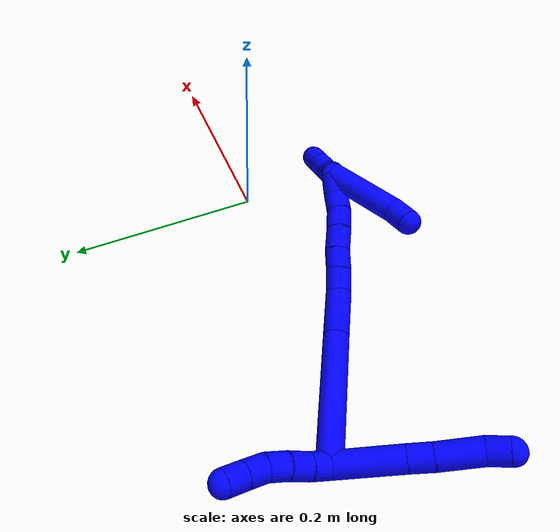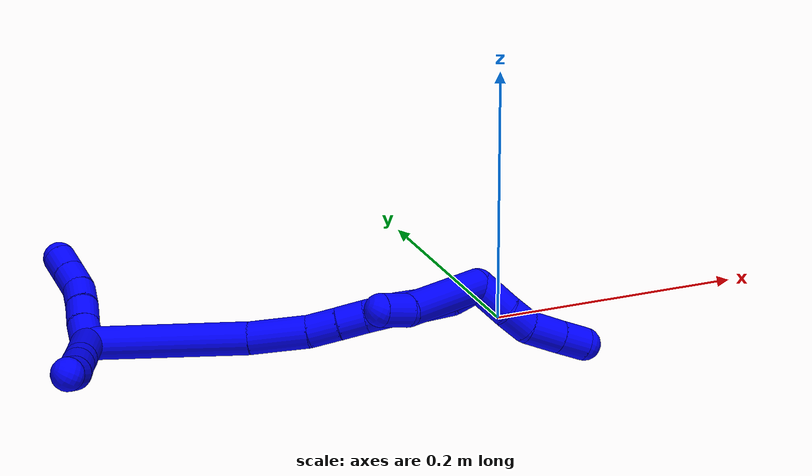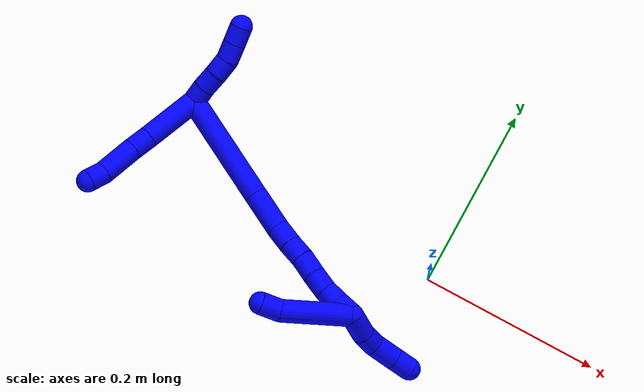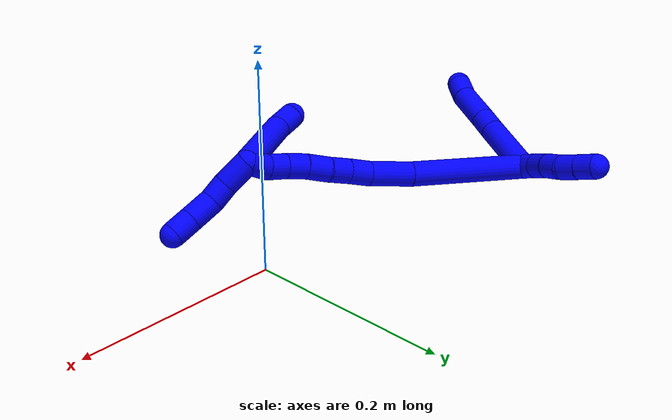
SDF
<sdf version="1.7">
 <world name="default">
  <model name="1">
   <static>0</static>
   <link name="1">
    <collision name="collision-cylinder-e_1_2_8">
     <pose>0.00879 -0.029521 0.011271 1.20609 0.271308 0.18743</pose>
     <geometry><cylinder><radius>0.0125</radius><length>0.065599</length></cylinder></geometry>
     <surface>
      <friction><ode><mu>1.16</mu><mu2>1.16</mu2><slip1>0</slip1><slip2>0</slip2></ode></friction>
      <contact><ode><kp>1e+06</kp><kd>1</kd><max_vel>0</max_vel><min_depth>0.001</min_depth></ode></contact>
     </surface>
    </collision>
    <visual name="visual-cylinder-e_1_2_8">
     <pose>0.00879 -0.029521 0.011271 1.20609 0.271308 0.18743</pose>
     <geometry><cylinder><radius>0.0125</radius><length>0.065599</length></cylinder></geometry>
     <material><ambient>0 0 1 1</ambient></material>
    </visual>
    <collision name="collision-cylinder-e_2_8_9">
     <pose>0.020457 -0.068949 0.026551 1.18622 0.262994 0.177836</pose>
     <geometry><cylinder><radius>0.0125</radius><length>0.022135</length></cylinder></geometry>
     <surface>
      <friction><ode><mu>1.16</mu><mu2>1.16</mu2><slip1>0</slip1><slip2>0</slip2></ode></friction>
      <contact><ode><kp>1e+06</kp><kd>1</kd><max_vel>0</max_vel><min_depth>0.001</min_depth></ode></contact>
     </surface>
    </collision>
    <visual name="visual-cylinder-e_2_8_9">
     <pose>0.020457 -0.068949 0.026551 1.18622 0.262994 0.177836</pose>
     <geometry><cylinder><radius>0.0125</radius><length>0.022135</length></cylinder></geometry>
     <material><ambient>0 0 1 1</ambient></material>
    </visual>
    <collision name="collision-cylinder-e_3_9_10">
     <pose>0.029669 -0.097471 0.037573 1.21057 0.308271 0.214183</pose>
     <geometry><cylinder><radius>0.0125</radius><length>0.041754</length></cylinder></geometry>
     <surface>
      <friction><ode><mu>1.16</mu><mu2>1.16</mu2><slip1>0</slip1><slip2>0</slip2></ode></friction>
      <contact><ode><kp>1e+06</kp><kd>1</kd><max_vel>0</max_vel><min_depth>0.001</min_depth></ode></contact>
     </surface>
    </collision>
    <visual name="visual-cylinder-e_3_9_10">
     <pose>0.029669 -0.097471 0.037573 1.21057 0.308271 0.214183</pose>
     <geometry><cylinder><radius>0.0125</radius><length>0.041754</length></cylinder></geometry>
     <material><ambient>0 0 1 1</ambient></material>
    </visual>
    <collision name="collision-cylinder-e_4_10_6">
     <pose>0.038925 -0.124275 0.050026 0.984273 0.288855 0.155636</pose>
     <geometry><cylinder><radius>0.0125</radius><length>0.020512</length></cylinder></geometry>
     <surface>
      <friction><ode><mu>1.16</mu><mu2>1.16</mu2><slip1>0</slip1><slip2>0</slip2></ode></friction>
      <contact><ode><kp>1e+06</kp><kd>1</kd><max_vel>0</max_vel><min_depth>0.001</min_depth></ode></contact>
     </surface>
    </collision>
    <visual name="visual-cylinder-e_4_10_6">
     <pose>0.038925 -0.124275 0.050026 0.984273 0.288855 0.155636</pose>
     <geometry><cylinder><radius>0.0125</radius><length>0.020512</length></cylinder></geometry>
     <material><ambient>0 0 1 1</ambient></material>
    </visual>
    <collision name="collision-cylinder-e_1_2_11">
     <pose>0.001498 0.009784 0.001422 -1.42652 0.150412 -0.1302</pose>
     <geometry><cylinder><radius>0.0125</radius><length>0.02</length></cylinder></geometry>
     <surface>
      <friction><ode><mu>1.16</mu><mu2>1.16</mu2><slip1>0</slip1><slip2>0</slip2></ode></friction>
      <contact><ode><kp>1e+06</kp><kd>1</kd><max_vel>0</max_vel><min_depth>0.001</min_depth></ode></contact>
     </surface>
    </collision>
    <visual name="visual-cylinder-e_1_2_11">
     <pose>0.001498 0.009784 0.001422 -1.42652 0.150412 -0.1302</pose>
     <geometry><cylinder><radius>0.0125</radius><length>0.02</length></cylinder></geometry>
     <material><ambient>0 0 1 1</ambient></material>
    </visual>
    <collision name="collision-cylinder-e_2_11_12">
     <pose>0.0049 0.029368 0.003437 -1.5103 0.191526 -0.180339</pose>
     <geometry><cylinder><radius>0.0125</radius><length>0.02</length></cylinder></geometry>
     <surface>
      <friction><ode><mu>1.16</mu><mu2>1.16</mu2><slip1>0</slip1><slip2>0</slip2></ode></friction>
      <contact><ode><kp>1e+06</kp><kd>1</kd><max_vel>0</max_vel><min_depth>0.001</min_depth></ode></contact>
     </surface>
    </collision>
    <visual name="visual-cylinder-e_2_11_12">
     <pose>0.0049 0.029368 0.003437 -1.5103 0.191526 -0.180339</pose>
     <geometry><cylinder><radius>0.0125</radius><length>0.02</length></cylinder></geometry>
     <material><ambient>0 0 1 1</ambient></material>
    </visual>
    <collision name="collision-cylinder-e_3_12_13">
     <pose>0.007578 0.049117 0.004664 -1.50715 0.077451 -0.072677</pose>
     <geometry><cylinder><radius>0.0125</radius><length>0.02</length></cylinder></geometry>
     <surface>
      <friction><ode><mu>1.16</mu><mu2>1.16</mu2><slip1>0</slip1><slip2>0</slip2></ode></friction>
      <contact><ode><kp>1e+06</kp><kd>1</kd><max_vel>0</max_vel><min_depth>0.001</min_depth></ode></contact>
     </surface>
    </collision>
    <visual name="visual-cylinder-e_3_12_13">
     <pose>0.007578 0.049117 0.004664 -1.50715 0.077451 -0.072677</pose>
     <geometry><cylinder><radius>0.0125</radius><length>0.02</length></cylinder></geometry>
     <material><ambient>0 0 1 1</ambient></material>
    </visual>
    <collision name="collision-cylinder-e_4_13_14">
     <pose>0.007994 0.068596 0.00831 -1.26467 -0.035761 0.026204</pose>
     <geometry><cylinder><radius>0.0125</radius><length>0.02</length></cylinder></geometry>
     <surface>
      <friction><ode><mu>1.16</mu><mu2>1.16</mu2><slip1>0</slip1><slip2>0</slip2></ode></friction>
      <contact><ode><kp>1e+06</kp><kd>1</kd><max_vel>0</max_vel><min_depth>0.001</min_depth></ode></contact>
     </surface>
    </collision>
    <visual name="visual-cylinder-e_4_13_14">
     <pose>0.007994 0.068596 0.00831 -1.26467 -0.035761 0.026204</pose>
     <geometry><cylinder><radius>0.0125</radius><length>0.02</length></cylinder></geometry>
     <material><ambient>0 0 1 1</ambient></material>
    </visual>
    <collision name="collision-cylinder-e_5_14_5">
     <pose>0.00728 0.087603 0.01449 -1.24819 -0.035613 0.025646</pose>
     <geometry><cylinder><radius>0.0125</radius><length>0.02</length></cylinder></geometry>
     <surface>
      <friction><ode><mu>1.16</mu><mu2>1.16</mu2><slip1>0</slip1><slip2>0</slip2></ode></friction>
      <contact><ode><kp>1e+06</kp><kd>1</kd><max_vel>0</max_vel><min_depth>0.001</min_depth></ode></contact>
     </surface>
    </collision>
    <visual name="visual-cylinder-e_5_14_5">
     <pose>0.00728 0.087603 0.01449 -1.24819 -0.035613 0.025646</pose>
     <geometry><cylinder><radius>0.0125</radius><length>0.02</length></cylinder></geometry>
     <material><ambient>0 0 1 1</ambient></material>
    </visual>
    <collision name="collision-cylinder-e_1_2_15">
     <pose>0.037294 -0.015691 -0.046566 2.81657 0.649205 2.23483</pose>
     <geometry><cylinder><radius>0.0125</radius><length>0.123377</length></cylinder></geometry>
     <surface>
      <friction><ode><mu>1.16</mu><mu2>1.16</mu2><slip1>0</slip1><slip2>0</slip2></ode></friction>
      <contact><ode><kp>1e+06</kp><kd>1</kd><max_vel>0</max_vel><min_depth>0.001</min_depth></ode></contact>
     </surface>
    </collision>
    <visual name="visual-cylinder-e_1_2_15">
     <pose>0.037294 -0.015691 -0.046566 2.81657 0.649205 2.23483</pose>
     <geometry><cylinder><radius>0.0125</radius><length>0.123377</length></cylinder></geometry>
     <material><ambient>0 0 1 1</ambient></material>
    </visual>
    <collision name="collision-cylinder-e_2_15_16">
     <pose>0.089651 -0.03669 -0.109019 2.81918 0.732435 2.33953</pose>
     <geometry><cylinder><radius>0.0125</radius><length>0.045053</length></cylinder></geometry>
     <surface>
      <friction><ode><mu>1.16</mu><mu2>1.16</mu2><slip1>0</slip1><slip2>0</slip2></ode></friction>
      <contact><ode><kp>1e+06</kp><kd>1</kd><max_vel>0</max_vel><min_depth>0.001</min_depth></ode></contact>
     </surface>
    </collision>
    <visual name="visual-cylinder-e_2_15_16">
     <pose>0.089651 -0.03669 -0.109019 2.81918 0.732435 2.33953</pose>
     <geometry><cylinder><radius>0.0125</radius><length>0.045053</length></cylinder></geometry>
     <material><ambient>0 0 1 1</ambient></material>
    </visual>
    <collision name="collision-cylinder-e_3_16_17">
     <pose>0.113462 -0.04369 -0.1323 2.91651 0.856377 2.65613</pose>
     <geometry><cylinder><radius>0.0125</radius><length>0.023157</length></cylinder></geometry>
     <surface>
      <friction><ode><mu>1.16</mu><mu2>1.16</mu2><slip1>0</slip1><slip2>0</slip2></ode></friction>
      <contact><ode><kp>1e+06</kp><kd>1</kd><max_vel>0</max_vel><min_depth>0.001</min_depth></ode></contact>
     </surface>
    </collision>
    <visual name="visual-cylinder-e_3_16_17">
     <pose>0.113462 -0.04369 -0.1323 2.91651 0.856377 2.65613</pose>
     <geometry><cylinder><radius>0.0125</radius><length>0.023157</length></cylinder></geometry>
     <material><ambient>0 0 1 1</ambient></material>
    </visual>
    <collision name="collision-cylinder-e_4_17_18">
     <pose>0.130121 -0.04637 -0.146748 3.00256 0.837878 2.83137</pose>
     <geometry><cylinder><radius>0.0125</radius><length>0.021291</length></cylinder></geometry>
     <surface>
      <friction><ode><mu>1.16</mu><mu2>1.16</mu2><slip1>0</slip1><slip2>0</slip2></ode></friction>
      <contact><ode><kp>1e+06</kp><kd>1</kd><max_vel>0</max_vel><min_depth>0.001</min_depth></ode></contact>
     </surface>
    </collision>
    <visual name="visual-cylinder-e_4_17_18">
     <pose>0.130121 -0.04637 -0.146748 3.00256 0.837878 2.83137</pose>
     <geometry><cylinder><radius>0.0125</radius><length>0.021291</length></cylinder></geometry>
     <material><ambient>0 0 1 1</ambient></material>
    </visual>
    <collision name="collision-cylinder-e_5_18_19">
     <pose>0.146977 -0.049748 -0.161086 2.82449 0.862193 2.47246</pose>
     <geometry><cylinder><radius>0.0125</radius><length>0.02356</length></cylinder></geometry>
     <surface>
      <friction><ode><mu>1.16</mu><mu2>1.16</mu2><slip1>0</slip1><slip2>0</slip2></ode></friction>
      <contact><ode><kp>1e+06</kp><kd>1</kd><max_vel>0</max_vel><min_depth>0.001</min_depth></ode></contact>
     </surface>
    </collision>
    <visual name="visual-cylinder-e_5_18_19">
     <pose>0.146977 -0.049748 -0.161086 2.82449 0.862193 2.47246</pose>
     <geometry><cylinder><radius>0.0125</radius><length>0.02356</length></cylinder></geometry>
     <material><ambient>0 0 1 1</ambient></material>
    </visual>
    <collision name="collision-cylinder-e_6_19_20">
     <pose>0.163181 -0.054136 -0.175942 2.88367 0.747574 2.50295</pose>
     <geometry><cylinder><radius>0.0125</radius><length>0.021357</length></cylinder></geometry>
     <surface>
      <friction><ode><mu>1.16</mu><mu2>1.16</mu2><slip1>0</slip1><slip2>0</slip2></ode></friction>
      <contact><ode><kp>1e+06</kp><kd>1</kd><max_vel>0</max_vel><min_depth>0.001</min_depth></ode></contact>
     </surface>
    </collision>
    <visual name="visual-cylinder-e_6_19_20">
     <pose>0.163181 -0.054136 -0.175942 2.88367 0.747574 2.50295</pose>
     <geometry><cylinder><radius>0.0125</radius><length>0.021357</length></cylinder></geometry>
     <material><ambient>0 0 1 1</ambient></material>
    </visual>
    <collision name="collision-cylinder-e_7_20_21">
     <pose>0.17722 -0.056392 -0.191031 3.10723 0.733488 3.05218</pose>
     <geometry><cylinder><radius>0.0125</radius><length>0.020251</length></cylinder></geometry>
     <surface>
      <friction><ode><mu>1.16</mu><mu2>1.16</mu2><slip1>0</slip1><slip2>0</slip2></ode></friction>
      <contact><ode><kp>1e+06</kp><kd>1</kd><max_vel>0</max_vel><min_depth>0.001</min_depth></ode></contact>
     </surface>
    </collision>
    <visual name="visual-cylinder-e_7_20_21">
     <pose>0.17722 -0.056392 -0.191031 3.10723 0.733488 3.05218</pose>
     <geometry><cylinder><radius>0.0125</radius><length>0.020251</length></cylinder></geometry>
     <material><ambient>0 0 1 1</ambient></material>
    </visual>
    <collision name="collision-cylinder-e_8_21_1">
     <pose>0.193423 -0.05614 -0.204152 -3.05081 1.03255 -2.98188</pose>
     <geometry><cylinder><radius>0.0125</radius><length>0.021954</length></cylinder></geometry>
     <surface>
      <friction><ode><mu>1.16</mu><mu2>1.16</mu2><slip1>0</slip1><slip2>0</slip2></ode></friction>
      <contact><ode><kp>1e+06</kp><kd>1</kd><max_vel>0</max_vel><min_depth>0.001</min_depth></ode></contact>
     </surface>
    </collision>
    <visual name="visual-cylinder-e_8_21_1">
     <pose>0.193423 -0.05614 -0.204152 -3.05081 1.03255 -2.98188</pose>
     <geometry><cylinder><radius>0.0125</radius><length>0.021954</length></cylinder></geometry>
     <material><ambient>0 0 1 1</ambient></material>
    </visual>
    <collision name="collision-cylinder-e_1_1_22">
     <pose>0.192288 -0.078204 -0.180564 0.658257 -0.278716 -0.095744</pose>
     <geometry><cylinder><radius>0.0125</radius><length>0.076766</length></cylinder></geometry>
     <surface>
      <friction><ode><mu>1.16</mu><mu2>1.16</mu2><slip1>0</slip1><slip2>0</slip2></ode></friction>
      <contact><ode><kp>1e+06</kp><kd>1</kd><max_vel>0</max_vel><min_depth>0.001</min_depth></ode></contact>
     </surface>
    </collision>
    <visual name="visual-cylinder-e_1_1_22">
     <pose>0.192288 -0.078204 -0.180564 0.658257 -0.278716 -0.095744</pose>
     <geometry><cylinder><radius>0.0125</radius><length>0.076766</length></cylinder></geometry>
     <material><ambient>0 0 1 1</ambient></material>
    </visual>
    <collision name="collision-cylinder-e_2_22_4">
     <pose>0.178997 -0.104304 -0.140646 0.317531 -0.237295 -0.038169</pose>
     <geometry><cylinder><radius>0.0125</radius><length>0.023234</length></cylinder></geometry>
     <surface>
      <friction><ode><mu>1.16</mu><mu2>1.16</mu2><slip1>0</slip1><slip2>0</slip2></ode></friction>
      <contact><ode><kp>1e+06</kp><kd>1</kd><max_vel>0</max_vel><min_depth>0.001</min_depth></ode></contact>
     </surface>
    </collision>
    <visual name="visual-cylinder-e_2_22_4">
     <pose>0.178997 -0.104304 -0.140646 0.317531 -0.237295 -0.038169</pose>
     <geometry><cylinder><radius>0.0125</radius><length>0.023234</length></cylinder></geometry>
     <material><ambient>0 0 1 1</ambient></material>
    </visual>
    <collision name="collision-cylinder-e_1_1_23">
     <pose>0.200475 -0.060515 -0.223459 2.79916 -0.161732 -0.876604</pose>
     <geometry><cylinder><radius>0.0125</radius><length>0.029481</length></cylinder></geometry>
     <surface>
      <friction><ode><mu>1.16</mu><mu2>1.16</mu2><slip1>0</slip1><slip2>0</slip2></ode></friction>
      <contact><ode><kp>1e+06</kp><kd>1</kd><max_vel>0</max_vel><min_depth>0.001</min_depth></ode></contact>
     </surface>
    </collision>
    <visual name="visual-cylinder-e_1_1_23">
     <pose>0.200475 -0.060515 -0.223459 2.79916 -0.161732 -0.876604</pose>
     <geometry><cylinder><radius>0.0125</radius><length>0.029481</length></cylinder></geometry>
     <material><ambient>0 0 1 1</ambient></material>
    </visual>
    <collision name="collision-cylinder-e_2_23_24">
     <pose>0.196259 -0.066924 -0.247211 2.99103 -0.179304 -1.74542</pose>
     <geometry><cylinder><radius>0.0125</radius><length>0.020657</length></cylinder></geometry>
     <surface>
      <friction><ode><mu>1.16</mu><mu2>1.16</mu2><slip1>0</slip1><slip2>0</slip2></ode></friction>
      <contact><ode><kp>1e+06</kp><kd>1</kd><max_vel>0</max_vel><min_depth>0.001</min_depth></ode></contact>
     </surface>
    </collision>
    <visual name="visual-cylinder-e_2_23_24">
     <pose>0.196259 -0.066924 -0.247211 2.99103 -0.179304 -1.74542</pose>
     <geometry><cylinder><radius>0.0125</radius><length>0.020657</length></cylinder></geometry>
     <material><ambient>0 0 1 1</ambient></material>
    </visual>
    <collision name="collision-cylinder-e_3_24_25">
     <pose>0.195934 -0.067838 -0.271107 -3.09755 0.109018 -2.37421</pose>
     <geometry><cylinder><radius>0.0125</radius><length>0.027887</length></cylinder></geometry>
     <surface>
      <friction><ode><mu>1.16</mu><mu2>1.16</mu2><slip1>0</slip1><slip2>0</slip2></ode></friction>
      <contact><ode><kp>1e+06</kp><kd>1</kd><max_vel>0</max_vel><min_depth>0.001</min_depth></ode></contact>
     </surface>
    </collision>
    <visual name="visual-cylinder-e_3_24_25">
     <pose>0.195934 -0.067838 -0.271107 -3.09755 0.109018 -2.37421</pose>
     <geometry><cylinder><radius>0.0125</radius><length>0.027887</length></cylinder></geometry>
     <material><ambient>0 0 1 1</ambient></material>
    </visual>
    <collision name="collision-cylinder-e_4_25_3">
     <pose>0.198804 -0.066614 -0.29584 -3.08521 0.123453 -2.28552</pose>
     <geometry><cylinder><radius>0.0125</radius><length>0.021974</length></cylinder></geometry>
     <surface>
      <friction><ode><mu>1.16</mu><mu2>1.16</mu2><slip1>0</slip1><slip2>0</slip2></ode></friction>
      <contact><ode><kp>1e+06</kp><kd>1</kd><max_vel>0</max_vel><min_depth>0.001</min_depth></ode></contact>
     </surface>
    </collision>
    <visual name="visual-cylinder-e_4_25_3">
     <pose>0.198804 -0.066614 -0.29584 -3.08521 0.123453 -2.28552</pose>
     <geometry><cylinder><radius>0.0125</radius><length>0.021974</length></cylinder></geometry>
     <material><ambient>0 0 1 1</ambient></material>
    </visual>
    <collision name="collision-sphere-3">
     <pose>0.200157 -0.065999 -0.306726 0 -0 0</pose>
     <geometry><sphere><radius>0.0125</radius></sphere></geometry>
     <surface>
      <friction><ode><mu>1.16</mu><mu2>1.16</mu2><slip1>0</slip1><slip2>0</slip2></ode></friction>
      <contact><ode><kp>1e+06</kp><kd>1</kd><max_vel>0</max_vel><min_depth>0.001</min_depth></ode></contact>
     </surface>
    </collision>
    <visual name="visual-sphere-3">
     <pose>0.200157 -0.065999 -0.306726 0 -0 0</pose>
     <geometry><sphere><radius>0.0125</radius></sphere></geometry>
     <material><ambient>0 0 1 1</ambient></material>
    </visual>
    <collision name="collision-sphere-25">
     <pose>0.197451 -0.067228 -0.284954 0 -0 0</pose>
     <geometry><sphere><radius>0.0125</radius></sphere></geometry>
     <surface>
      <friction><ode><mu>1.16</mu><mu2>1.16</mu2><slip1>0</slip1><slip2>0</slip2></ode></friction>
      <contact><ode><kp>1e+06</kp><kd>1</kd><max_vel>0</max_vel><min_depth>0.001</min_depth></ode></contact>
     </surface>
    </collision>
    <visual name="visual-sphere-25">
     <pose>0.197451 -0.067228 -0.284954 0 -0 0</pose>
     <geometry><sphere><radius>0.0125</radius></sphere></geometry>
     <material><ambient>0 0 1 1</ambient></material>
    </visual>
    <collision name="collision-sphere-24">
     <pose>0.194417 -0.068449 -0.257259 0 -0 0</pose>
     <geometry><sphere><radius>0.0125</radius></sphere></geometry>
     <surface>
      <friction><ode><mu>1.16</mu><mu2>1.16</mu2><slip1>0</slip1><slip2>0</slip2></ode></friction>
      <contact><ode><kp>1e+06</kp><kd>1</kd><max_vel>0</max_vel><min_depth>0.001</min_depth></ode></contact>
     </surface>
    </collision>
    <visual name="visual-sphere-24">
     <pose>0.194417 -0.068449 -0.257259 0 -0 0</pose>
     <geometry><sphere><radius>0.0125</radius></sphere></geometry>
     <material><ambient>0 0 1 1</ambient></material>
    </visual>
    <collision name="collision-sphere-23">
     <pose>0.198101 -0.0654 -0.237163 0 -0 0</pose>
     <geometry><sphere><radius>0.0125</radius></sphere></geometry>
     <surface>
      <friction><ode><mu>1.16</mu><mu2>1.16</mu2><slip1>0</slip1><slip2>0</slip2></ode></friction>
      <contact><ode><kp>1e+06</kp><kd>1</kd><max_vel>0</max_vel><min_depth>0.001</min_depth></ode></contact>
     </surface>
    </collision>
    <visual name="visual-sphere-23">
     <pose>0.198101 -0.0654 -0.237163 0 -0 0</pose>
     <geometry><sphere><radius>0.0125</radius></sphere></geometry>
     <material><ambient>0 0 1 1</ambient></material>
    </visual>
    <collision name="collision-sphere-4">
     <pose>0.176267 -0.107829 -0.129919 0 -0 0</pose>
     <geometry><sphere><radius>0.0125</radius></sphere></geometry>
     <surface>
      <friction><ode><mu>1.16</mu><mu2>1.16</mu2><slip1>0</slip1><slip2>0</slip2></ode></friction>
      <contact><ode><kp>1e+06</kp><kd>1</kd><max_vel>0</max_vel><min_depth>0.001</min_depth></ode></contact>
     </surface>
    </collision>
    <visual name="visual-sphere-4">
     <pose>0.176267 -0.107829 -0.129919 0 -0 0</pose>
     <geometry><sphere><radius>0.0125</radius></sphere></geometry>
     <material><ambient>0 0 1 1</ambient></material>
    </visual>
    <collision name="collision-sphere-22">
     <pose>0.181728 -0.100778 -0.151373 0 -0 0</pose>
     <geometry><sphere><radius>0.0125</radius></sphere></geometry>
     <surface>
      <friction><ode><mu>1.16</mu><mu2>1.16</mu2><slip1>0</slip1><slip2>0</slip2></ode></friction>
      <contact><ode><kp>1e+06</kp><kd>1</kd><max_vel>0</max_vel><min_depth>0.001</min_depth></ode></contact>
     </surface>
    </collision>
    <visual name="visual-sphere-22">
     <pose>0.181728 -0.100778 -0.151373 0 -0 0</pose>
     <geometry><sphere><radius>0.0125</radius></sphere></geometry>
     <material><ambient>0 0 1 1</ambient></material>
    </visual>
    <collision name="collision-sphere-1">
     <pose>0.202848 -0.05563 -0.209756 0 -0 0</pose>
     <geometry><sphere><radius>0.0125</radius></sphere></geometry>
     <surface>
      <friction><ode><mu>1.16</mu><mu2>1.16</mu2><slip1>0</slip1><slip2>0</slip2></ode></friction>
      <contact><ode><kp>1e+06</kp><kd>1</kd><max_vel>0</max_vel><min_depth>0.001</min_depth></ode></contact>
     </surface>
    </collision>
    <visual name="visual-sphere-1">
     <pose>0.202848 -0.05563 -0.209756 0 -0 0</pose>
     <geometry><sphere><radius>0.0125</radius></sphere></geometry>
     <material><ambient>0 0 1 1</ambient></material>
    </visual>
    <collision name="collision-sphere-21">
     <pose>0.183998 -0.05665 -0.198548 0 -0 0</pose>
     <geometry><sphere><radius>0.0125</radius></sphere></geometry>
     <surface>
      <friction><ode><mu>1.16</mu><mu2>1.16</mu2><slip1>0</slip1><slip2>0</slip2></ode></friction>
      <contact><ode><kp>1e+06</kp><kd>1</kd><max_vel>0</max_vel><min_depth>0.001</min_depth></ode></contact>
     </surface>
    </collision>
    <visual name="visual-sphere-21">
     <pose>0.183998 -0.05665 -0.198548 0 -0 0</pose>
     <geometry><sphere><radius>0.0125</radius></sphere></geometry>
     <material><ambient>0 0 1 1</ambient></material>
    </visual>
    <collision name="collision-sphere-11">
     <pose>0.002997 0.019569 0.002843 0 -0 0</pose>
     <geometry><sphere><radius>0.0125</radius></sphere></geometry>
     <surface>
      <friction><ode><mu>1.16</mu><mu2>1.16</mu2><slip1>0</slip1><slip2>0</slip2></ode></friction>
      <contact><ode><kp>1e+06</kp><kd>1</kd><max_vel>0</max_vel><min_depth>0.001</min_depth></ode></contact>
     </surface>
    </collision>
    <visual name="visual-sphere-11">
     <pose>0.002997 0.019569 0.002843 0 -0 0</pose>
     <geometry><sphere><radius>0.0125</radius></sphere></geometry>
     <material><ambient>0 0 1 1</ambient></material>
    </visual>
    <collision name="collision-sphere-6">
     <pose>0.041846 -0.132463 0.055467 0 -0 0</pose>
     <geometry><sphere><radius>0.0125</radius></sphere></geometry>
     <surface>
      <friction><ode><mu>1.16</mu><mu2>1.16</mu2><slip1>0</slip1><slip2>0</slip2></ode></friction>
      <contact><ode><kp>1e+06</kp><kd>1</kd><max_vel>0</max_vel><min_depth>0.001</min_depth></ode></contact>
     </surface>
    </collision>
    <visual name="visual-sphere-6">
     <pose>0.041846 -0.132463 0.055467 0 -0 0</pose>
     <geometry><sphere><radius>0.0125</radius></sphere></geometry>
     <material><ambient>0 0 1 1</ambient></material>
    </visual>
    <collision name="collision-sphere-10">
     <pose>0.036003 -0.116087 0.044584 0 -0 0</pose>
     <geometry><sphere><radius>0.0125</radius></sphere></geometry>
     <surface>
      <friction><ode><mu>1.16</mu><mu2>1.16</mu2><slip1>0</slip1><slip2>0</slip2></ode></friction>
      <contact><ode><kp>1e+06</kp><kd>1</kd><max_vel>0</max_vel><min_depth>0.001</min_depth></ode></contact>
     </surface>
    </collision>
    <visual name="visual-sphere-10">
     <pose>0.036003 -0.116087 0.044584 0 -0 0</pose>
     <geometry><sphere><radius>0.0125</radius></sphere></geometry>
     <material><ambient>0 0 1 1</ambient></material>
    </visual>
    <collision name="collision-sphere-9">
     <pose>0.023334 -0.078855 0.030561 0 -0 0</pose>
     <geometry><sphere><radius>0.0125</radius></sphere></geometry>
     <surface>
      <friction><ode><mu>1.16</mu><mu2>1.16</mu2><slip1>0</slip1><slip2>0</slip2></ode></friction>
      <contact><ode><kp>1e+06</kp><kd>1</kd><max_vel>0</max_vel><min_depth>0.001</min_depth></ode></contact>
     </surface>
    </collision>
    <visual name="visual-sphere-9">
     <pose>0.023334 -0.078855 0.030561 0 -0 0</pose>
     <geometry><sphere><radius>0.0125</radius></sphere></geometry>
     <material><ambient>0 0 1 1</ambient></material>
    </visual>
    <collision name="collision-sphere-2">
     <geometry><sphere><radius>0.0125</radius></sphere></geometry>
     <surface>
      <friction><ode><mu>1.16</mu><mu2>1.16</mu2><slip1>0</slip1><slip2>0</slip2></ode></friction>
      <contact><ode><kp>1e+06</kp><kd>1</kd><max_vel>0</max_vel><min_depth>0.001</min_depth></ode></contact>
     </surface>
    </collision>
    <visual name="visual-sphere-2">
     <geometry><sphere><radius>0.0125</radius></sphere></geometry>
     <material><ambient>0 0 1 1</ambient></material>
    </visual>
    <collision name="collision-sphere-19">
     <pose>0.155921 -0.052138 -0.16837 0 -0 0</pose>
     <geometry><sphere><radius>0.0125</radius></sphere></geometry>
     <surface>
      <friction><ode><mu>1.16</mu><mu2>1.16</mu2><slip1>0</slip1><slip2>0</slip2></ode></friction>
      <contact><ode><kp>1e+06</kp><kd>1</kd><max_vel>0</max_vel><min_depth>0.001</min_depth></ode></contact>
     </surface>
    </collision>
    <visual name="visual-sphere-19">
     <pose>0.155921 -0.052138 -0.16837 0 -0 0</pose>
     <geometry><sphere><radius>0.0125</radius></sphere></geometry>
     <material><ambient>0 0 1 1</ambient></material>
    </visual>
    <collision name="collision-sphere-8">
     <pose>0.01758 -0.059043 0.022542 0 -0 0</pose>
     <geometry><sphere><radius>0.0125</radius></sphere></geometry>
     <surface>
      <friction><ode><mu>1.16</mu><mu2>1.16</mu2><slip1>0</slip1><slip2>0</slip2></ode></friction>
      <contact><ode><kp>1e+06</kp><kd>1</kd><max_vel>0</max_vel><min_depth>0.001</min_depth></ode></contact>
     </surface>
    </collision>
    <visual name="visual-sphere-8">
     <pose>0.01758 -0.059043 0.022542 0 -0 0</pose>
     <geometry><sphere><radius>0.0125</radius></sphere></geometry>
     <material><ambient>0 0 1 1</ambient></material>
    </visual>
    <collision name="collision-sphere-12">
     <pose>0.006804 0.039167 0.00403 0 -0 0</pose>
     <geometry><sphere><radius>0.0125</radius></sphere></geometry>
     <surface>
      <friction><ode><mu>1.16</mu><mu2>1.16</mu2><slip1>0</slip1><slip2>0</slip2></ode></friction>
      <contact><ode><kp>1e+06</kp><kd>1</kd><max_vel>0</max_vel><min_depth>0.001</min_depth></ode></contact>
     </surface>
    </collision>
    <visual name="visual-sphere-12">
     <pose>0.006804 0.039167 0.00403 0 -0 0</pose>
     <geometry><sphere><radius>0.0125</radius></sphere></geometry>
     <material><ambient>0 0 1 1</ambient></material>
    </visual>
    <collision name="collision-sphere-13">
     <pose>0.008352 0.059067 0.005298 0 -0 0</pose>
     <geometry><sphere><radius>0.0125</radius></sphere></geometry>
     <surface>
      <friction><ode><mu>1.16</mu><mu2>1.16</mu2><slip1>0</slip1><slip2>0</slip2></ode></friction>
      <contact><ode><kp>1e+06</kp><kd>1</kd><max_vel>0</max_vel><min_depth>0.001</min_depth></ode></contact>
     </surface>
    </collision>
    <visual name="visual-sphere-13">
     <pose>0.008352 0.059067 0.005298 0 -0 0</pose>
     <geometry><sphere><radius>0.0125</radius></sphere></geometry>
     <material><ambient>0 0 1 1</ambient></material>
    </visual>
    <collision name="collision-sphere-14">
     <pose>0.007636 0.078125 0.011322 0 -0 0</pose>
     <geometry><sphere><radius>0.0125</radius></sphere></geometry>
     <surface>
      <friction><ode><mu>1.16</mu><mu2>1.16</mu2><slip1>0</slip1><slip2>0</slip2></ode></friction>
      <contact><ode><kp>1e+06</kp><kd>1</kd><max_vel>0</max_vel><min_depth>0.001</min_depth></ode></contact>
     </surface>
    </collision>
    <visual name="visual-sphere-14">
     <pose>0.007636 0.078125 0.011322 0 -0 0</pose>
     <geometry><sphere><radius>0.0125</radius></sphere></geometry>
     <material><ambient>0 0 1 1</ambient></material>
    </visual>
    <collision name="collision-sphere-5">
     <pose>0.006924 0.097081 0.017659 0 -0 0</pose>
     <geometry><sphere><radius>0.0125</radius></sphere></geometry>
     <surface>
      <friction><ode><mu>1.16</mu><mu2>1.16</mu2><slip1>0</slip1><slip2>0</slip2></ode></friction>
      <contact><ode><kp>1e+06</kp><kd>1</kd><max_vel>0</max_vel><min_depth>0.001</min_depth></ode></contact>
     </surface>
    </collision>
    <visual name="visual-sphere-5">
     <pose>0.006924 0.097081 0.017659 0 -0 0</pose>
     <geometry><sphere><radius>0.0125</radius></sphere></geometry>
     <material><ambient>0 0 1 1</ambient></material>
    </visual>
    <collision name="collision-sphere-15">
     <pose>0.074588 -0.031383 -0.093132 0 -0 0</pose>
     <geometry><sphere><radius>0.0125</radius></sphere></geometry>
     <surface>
      <friction><ode><mu>1.16</mu><mu2>1.16</mu2><slip1>0</slip1><slip2>0</slip2></ode></friction>
      <contact><ode><kp>1e+06</kp><kd>1</kd><max_vel>0</max_vel><min_depth>0.001</min_depth></ode></contact>
     </surface>
    </collision>
    <visual name="visual-sphere-15">
     <pose>0.074588 -0.031383 -0.093132 0 -0 0</pose>
     <geometry><sphere><radius>0.0125</radius></sphere></geometry>
     <material><ambient>0 0 1 1</ambient></material>
    </visual>
    <collision name="collision-sphere-16">
     <pose>0.104714 -0.041997 -0.124906 0 -0 0</pose>
     <geometry><sphere><radius>0.0125</radius></sphere></geometry>
     <surface>
      <friction><ode><mu>1.16</mu><mu2>1.16</mu2><slip1>0</slip1><slip2>0</slip2></ode></friction>
      <contact><ode><kp>1e+06</kp><kd>1</kd><max_vel>0</max_vel><min_depth>0.001</min_depth></ode></contact>
     </surface>
    </collision>
    <visual name="visual-sphere-16">
     <pose>0.104714 -0.041997 -0.124906 0 -0 0</pose>
     <geometry><sphere><radius>0.0125</radius></sphere></geometry>
     <material><ambient>0 0 1 1</ambient></material>
    </visual>
    <collision name="collision-sphere-17">
     <pose>0.122209 -0.045383 -0.139695 0 -0 0</pose>
     <geometry><sphere><radius>0.0125</radius></sphere></geometry>
     <surface>
      <friction><ode><mu>1.16</mu><mu2>1.16</mu2><slip1>0</slip1><slip2>0</slip2></ode></friction>
      <contact><ode><kp>1e+06</kp><kd>1</kd><max_vel>0</max_vel><min_depth>0.001</min_depth></ode></contact>
     </surface>
    </collision>
    <visual name="visual-sphere-17">
     <pose>0.122209 -0.045383 -0.139695 0 -0 0</pose>
     <geometry><sphere><radius>0.0125</radius></sphere></geometry>
     <material><ambient>0 0 1 1</ambient></material>
    </visual>
    <collision name="collision-sphere-18">
     <pose>0.138033 -0.047357 -0.153802 0 -0 0</pose>
     <geometry><sphere><radius>0.0125</radius></sphere></geometry>
     <surface>
      <friction><ode><mu>1.16</mu><mu2>1.16</mu2><slip1>0</slip1><slip2>0</slip2></ode></friction>
      <contact><ode><kp>1e+06</kp><kd>1</kd><max_vel>0</max_vel><min_depth>0.001</min_depth></ode></contact>
     </surface>
    </collision>
    <visual name="visual-sphere-18">
     <pose>0.138033 -0.047357 -0.153802 0 -0 0</pose>
     <geometry><sphere><radius>0.0125</radius></sphere></geometry>
     <material><ambient>0 0 1 1</ambient></material>
    </visual>
    <collision name="collision-sphere-20">
     <pose>0.170441 -0.056133 -0.183514 0 -0 0</pose>
     <geometry><sphere><radius>0.0125</radius></sphere></geometry>
     <surface>
      <friction><ode><mu>1.16</mu><mu2>1.16</mu2><slip1>0</slip1><slip2>0</slip2></ode></friction>
      <contact><ode><kp>1e+06</kp><kd>1</kd><max_vel>0</max_vel><min_depth>0.001</min_depth></ode></contact>
     </surface>
    </collision>
    <visual name="visual-sphere-20">
     <pose>0.170441 -0.056133 -0.183514 0 -0 0</pose>
     <geometry><sphere><radius>0.0125</radius></sphere></geometry>
     <material><ambient>0 0 1 1</ambient></material>
    </visual>
    <inertial>
     <pose>0.09492 -0.040576 -0.094753 0 -0 0</pose>
     <mass>0.75</mass>
     <inertia>
      <ixx>0.000113</ixx>
      <ixy>0</ixy>
      <ixz>0</ixz>
      <iyy>0.000281</iyy>
      <iyz>0</iyz>
      <izz>-2.6e-05</izz>
     </inertia>
    </inertial>
   </link>
   <pose>-0.314998 0.049349 0.011587 0.350804 -0.998292 -0.516275</pose>
  </model>
 </world>
</sdf>
